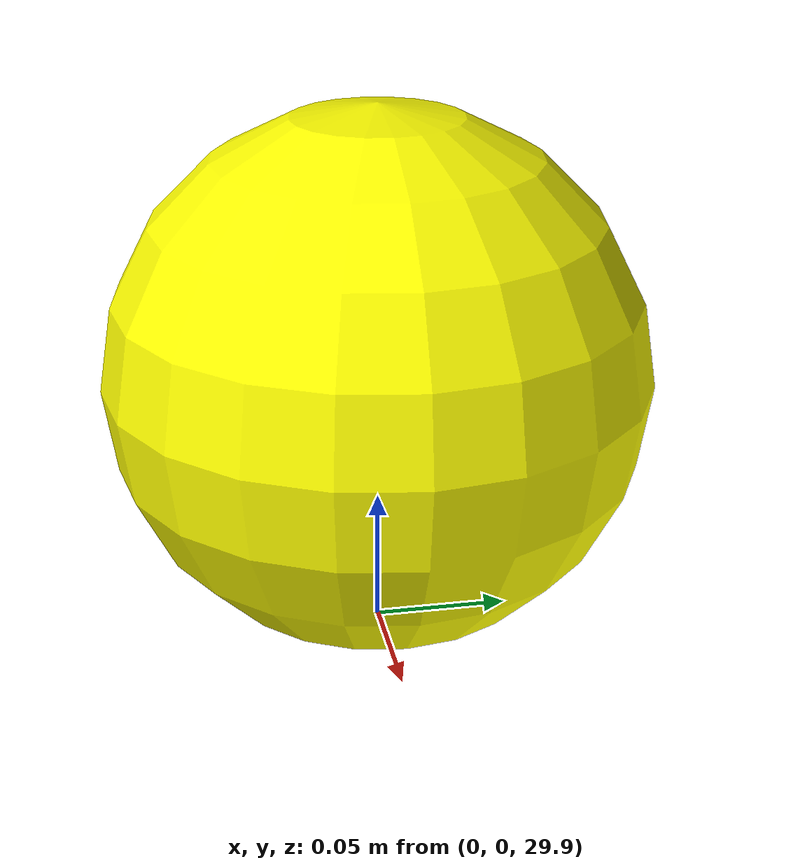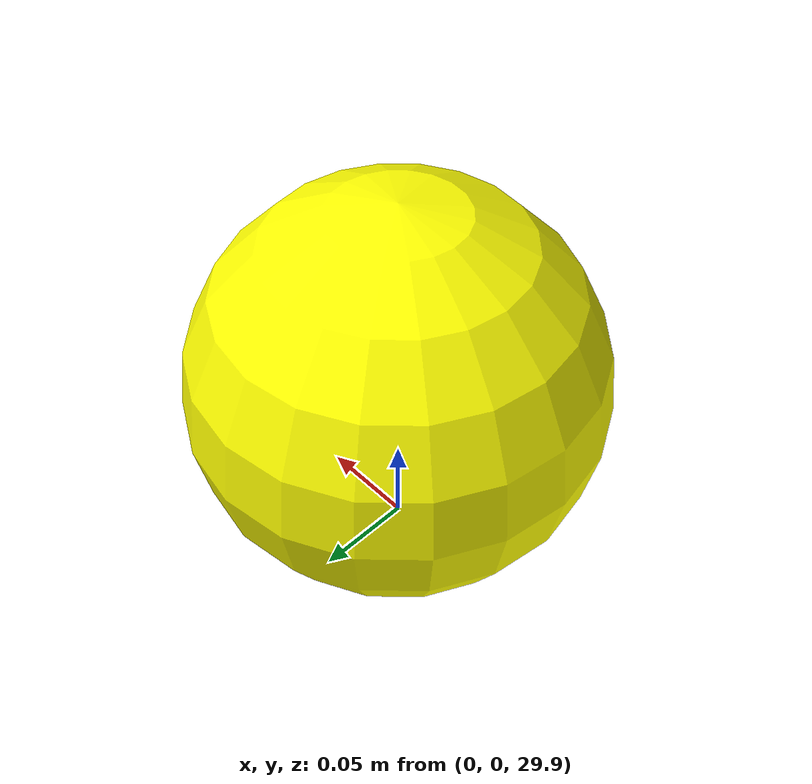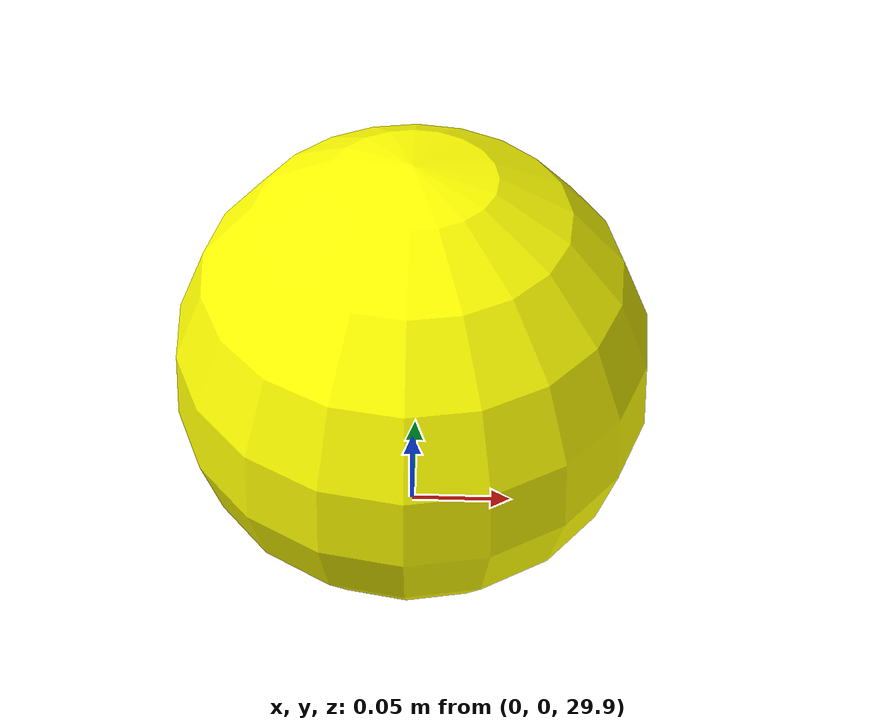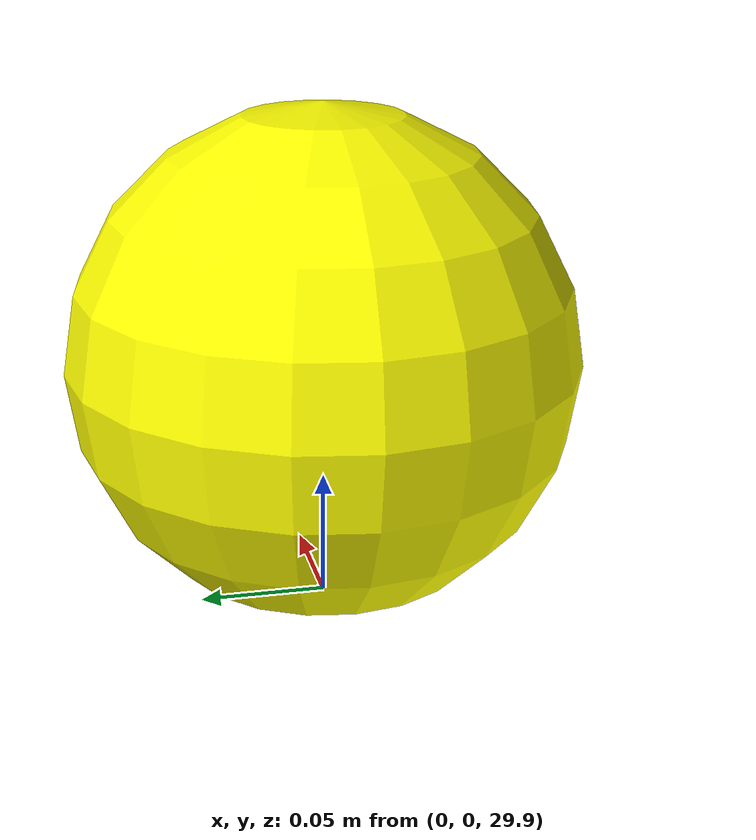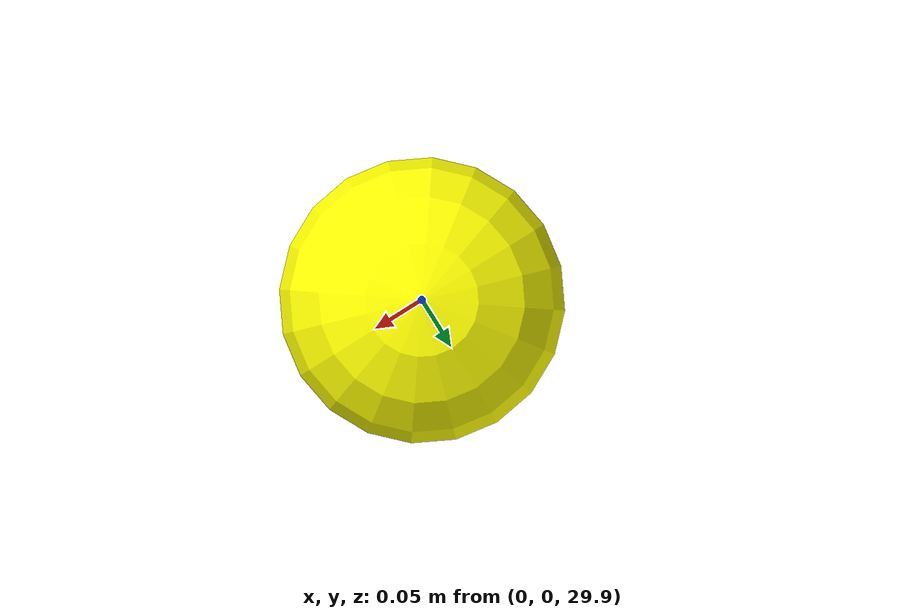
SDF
<sdf version="1.10">
 <world name="hypa_world">
  <model name="ground_plane">
   <static>true</static>
   <link name="link">
    <pose>0 0 -0.5 0 0 0</pose>
    <collision name="collision">
     <geometry><box><size>100 100 1</size></box></geometry>
     <surface><friction><ode><mu>100</mu><mu2>50</mu2></ode></friction></surface>
    </collision>
    <visual name="visual">
     <cast_shadows>false</cast_shadows>
     <geometry><box><size>100 100 1</size></box></geometry>
     <material>
      <ambient>0.5 0.5 0.5 1</ambient>
      <diffuse>0.5 0.5 0.5 1</diffuse>
      <specular>0.1 0.1 0.1 1</specular>
     </material>
    </visual>
   </link>
  </model>
  <model name="crane">
   <pose>0 0 30 0 0 0</pose>
   <link name="crane_hook">
    <visual name="crane_hook_visual">
     <geometry><sphere><radius>0.1</radius></sphere></geometry>
     <material><ambient>1 1 0 1</ambient><diffuse>1 1 0 1</diffuse><specular>0.1 0.1 0.1 1</specular></material>
     <cast_shadows>false</cast_shadows>
    </visual>
    <inertial><mass>0</mass></inertial>
   </link>
   <joint name="foundation" type="fixed"><parent>world</parent><child>crane_hook</child></joint>
   <plugin filename="gz-sim-detachable-joint-system" name="gz::sim::systems::DetachableJoint">
    <parent_link>crane_hook</parent_link>
    <child_model>hypa</child_model>
    <child_link>hypa_base</child_link>
    <detach_topic>/crane/detach</detach_topic>
    <attach_topic>/crane/attach</attach_topic>
    <output_topic>/crane/state</output_topic>
   </plugin>
  </model>
 </world>
</sdf>
